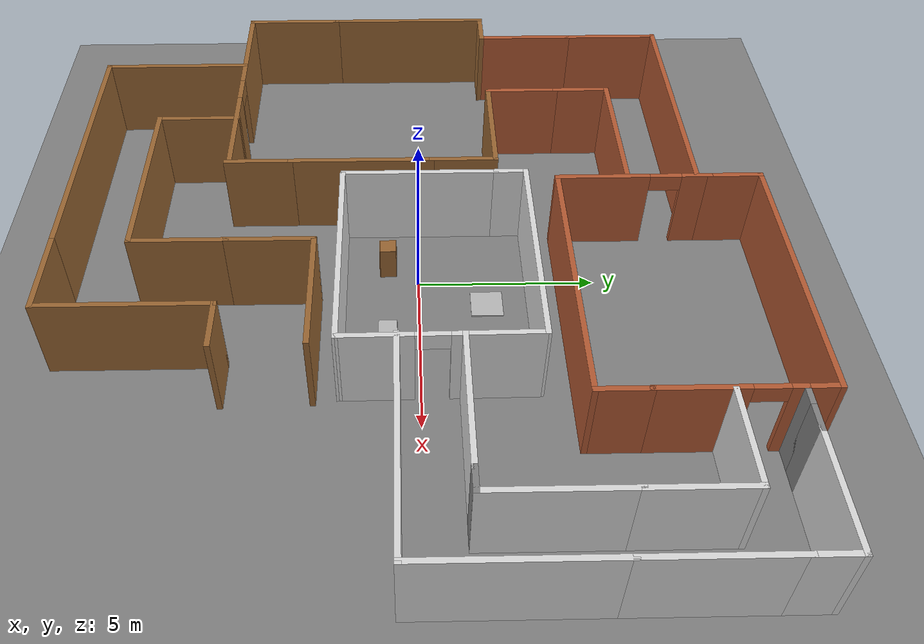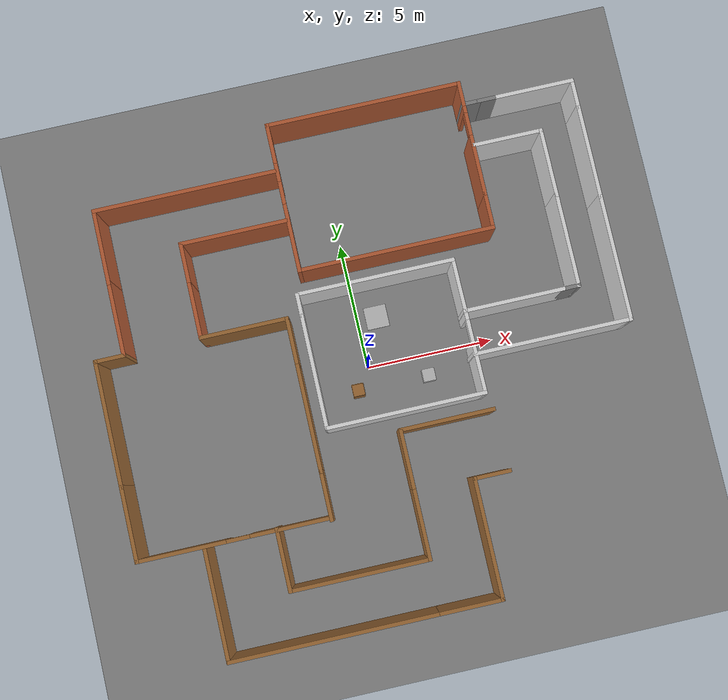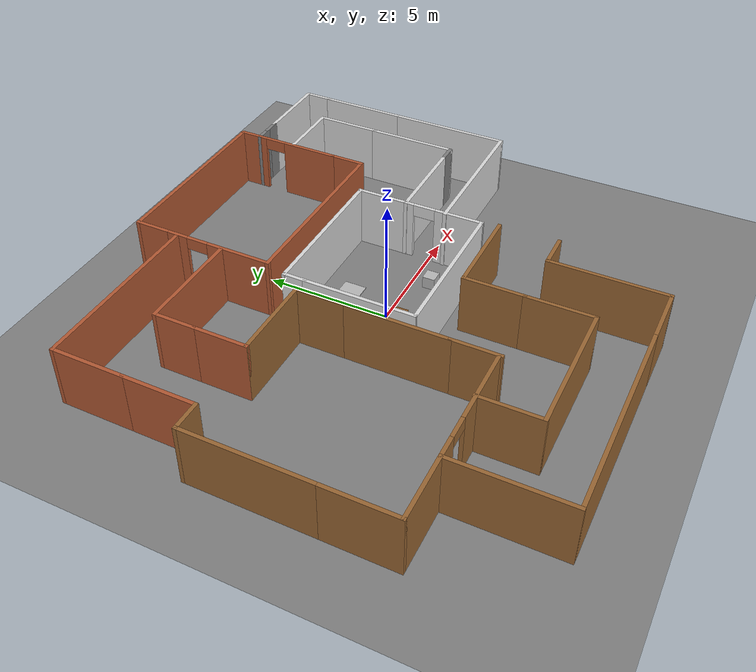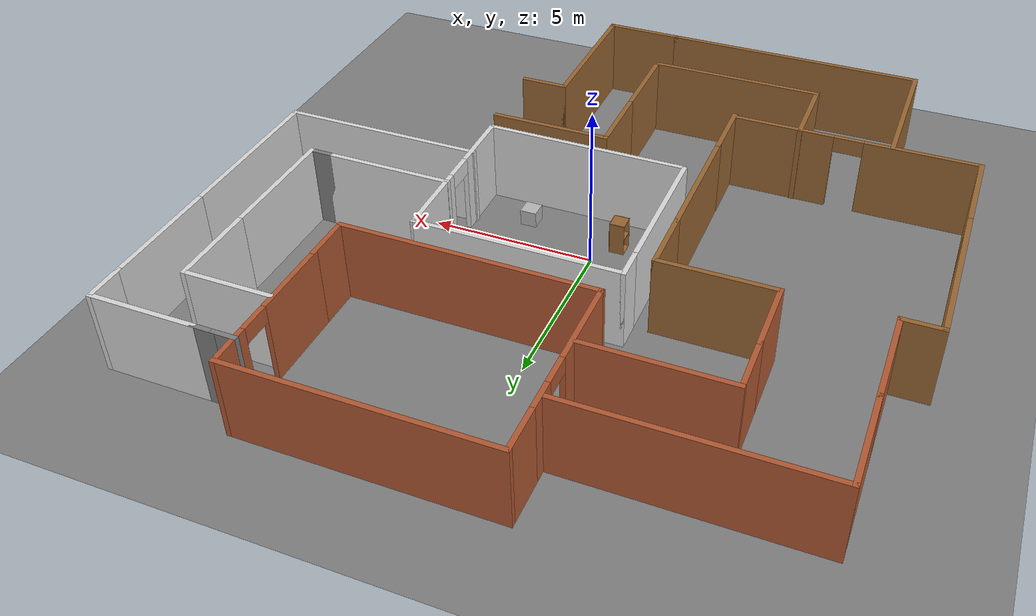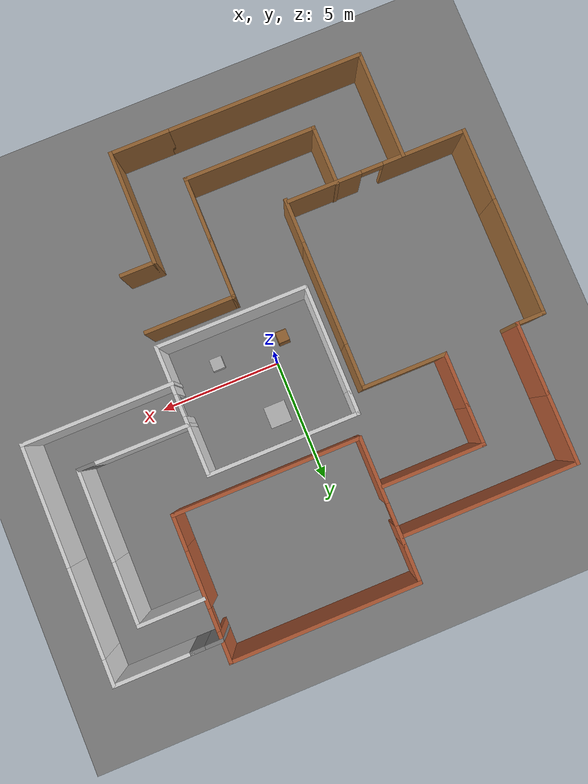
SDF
<sdf version='1.7'>
  <world name='default'>
    <light name='sun' type='directional'>
      <cast_shadows>1</cast_shadows>
      <pose>0 0 10 0 -0 0</pose>
      <diffuse>0.8 0.8 0.8 1</diffuse>
      <specular>0.2 0.2 0.2 1</specular>
      <attenuation>
        <range>1000</range>
        <constant>0.9</constant>
        <linear>0.01</linear>
        <quadratic>0.001</quadratic>
      </attenuation>
      <direction>-0.5 0.1 -0.9</direction>
      <spot>
        <inner_angle>0</inner_angle>
        <outer_angle>0</outer_angle>
        <falloff>0</falloff>
      </spot>
    </light>
    <model name='ground_plane'>
      <static>1</static>
      <link name='link'>
        <collision name='collision'>
          <geometry>
            <plane>
              <normal>0 0 1</normal>
              <size>100 100</size>
            </plane>
          </geometry>
          <surface>
            <friction>
              <ode>
                <mu>100</mu>
                <mu2>50</mu2>
              </ode>
              <torsional>
                <ode/>
              </torsional>
            </friction>
            <contact>
              <ode/>
            </contact>
            <bounce/>
          </surface>
        </collision>
        <visual name='visual'>
          <cast_shadows>0</cast_shadows>
          <geometry>
            <plane>
              <normal>0 0 1</normal>
              <size>100 100</size>
            </plane>
          </geometry>
          <material><diffuse>0.5 0.5 0.5 1</diffuse><ambient>0.5 0.5 0.5 1</ambient></material>
        </visual>
        <self_collide>0</self_collide>
        <enable_wind>0</enable_wind>
        <kinematic>0</kinematic>
      </link>
    </model>
    <gravity>0 0 -9.8</gravity>
    <magnetic_field>6e-06 2.3e-05 -4.2e-05</magnetic_field>
    <atmosphere type='adiabatic'/>
    <physics type='ode'>
      <max_step_size>0.001</max_step_size>
      <real_time_factor>1</real_time_factor>
      <real_time_update_rate>1000</real_time_update_rate>
    </physics>
    <scene>
      <ambient>0.4 0.4 0.4 1</ambient>
      <background>0.7 0.7 0.7 1</background>
      <shadows>1</shadows>
    </scene>
    <audio>
      <device>default</device>
    </audio>
    <wind/>
    <spherical_coordinates>
      <surface_model>EARTH_WGS84</surface_model>
      <latitude_deg>0</latitude_deg>
      <longitude_deg>0</longitude_deg>
      <elevation>0</elevation>
      <heading_deg>0</heading_deg>
    </spherical_coordinates>
    <model name='turtle_train_world.world'>
      <pose>0 0 0 0 0 0</pose>
      <link name='Wall_101'>
        <collision name='Wall_101_Collision'>
          <geometry>
            <box>
              <size>1.5 0.15 2.5</size>
            </box>
          </geometry>
          <pose>0 0 1.25 0 -0 0</pose>
          <surface>
            <contact>
              <ode/>
            </contact>
            <bounce/>
            <friction>
              <torsional>
                <ode/>
              </torsional>
              <ode/>
            </friction>
          </surface>
        </collision>
        <visual name='Wall_101_Visual'>
          <pose>0 0 1.25 0 -0 0</pose>
          <geometry>
            <box>
              <size>1.5 0.15 2.5</size>
            </box>
          </geometry>
          <material><diffuse>0.6 0.4 0.2 1</diffuse><ambient>0.6 0.4 0.2 1</ambient></material>
          <meta>
            <layer>0</layer>
          </meta>
        </visual>
        <pose>3.595 -5.19 0 0 -0 0</pose>
        <self_collide>0</self_collide>
        <enable_wind>0</enable_wind>
        <kinematic>0</kinematic>
      </link>
      <link name='Wall_19'>
        <collision name='Wall_19_Collision'>
          <geometry>
            <box>
              <size>6.25 0.15 2.5</size>
            </box>
          </geometry>
          <pose>0 0 1.25 0 -0 0</pose>
          <surface>
            <contact>
              <ode/>
            </contact>
            <bounce/>
            <friction>
              <torsional>
                <ode/>
              </torsional>
              <ode/>
            </friction>
          </surface>
        </collision>
        <visual name='Wall_19_Visual'>
          <pose>0 0 1.25 0 -0 0</pose>
          <geometry>
            <box>
              <size>6.25 0.15 2.5</size>
            </box>
          </geometry>
          <material><diffuse>0.85 0.85 0.85 1</diffuse><ambient>0.85 0.85 0.85 1</ambient></material>
          <meta>
            <layer>0</layer>
          </meta>
        </visual>
        <pose>1.01 -2.12 0 0 -0 0</pose>
        <self_collide>0</self_collide>
        <enable_wind>0</enable_wind>
        <kinematic>0</kinematic>
      </link>
      <link name='Wall_21'>
        <collision name='Wall_21_Collision'>
          <geometry>
            <box>
              <size>4.5 0.15 2.5</size>
            </box>
          </geometry>
          <pose>0 0 1.25 0 -0 0</pose>
          <surface>
            <contact>
              <ode/>
            </contact>
            <bounce/>
            <friction>
              <torsional>
                <ode/>
              </torsional>
              <ode/>
            </friction>
          </surface>
        </collision>
        <visual name='Wall_21_Visual'>
          <pose>0 0 1.25 0 -0 0</pose>
          <geometry>
            <box>
              <size>4.5 0.15 2.5</size>
            </box>
          </geometry>
          <material><diffuse>0.85 0.85 0.85 1</diffuse><ambient>0.85 0.85 0.85 1</ambient></material>
          <meta>
            <layer>0</layer>
          </meta>
        </visual>
        <pose>-2.09 0.085 0 0 -0 1.5708</pose>
        <self_collide>0</self_collide>
        <enable_wind>0</enable_wind>
        <kinematic>0</kinematic>
      </link>
      <link name='Wall_23'>
        <collision name='Wall_23_Collision'>
          <geometry>
            <box>
              <size>1 0.15 2.5</size>
            </box>
          </geometry>
          <pose>0 0 1.25 0 -0 0</pose>
          <surface>
            <contact>
              <ode/>
            </contact>
            <bounce/>
            <friction>
              <torsional>
                <ode/>
              </torsional>
              <ode/>
            </friction>
          </surface>
        </collision>
        <visual name='Wall_23_Visual'>
          <pose>0 0 1.25 0 -0 0</pose>
          <geometry>
            <box>
              <size>1 0.15 2.5</size>
            </box>
          </geometry>
          <material><diffuse>0.85 0.85 0.85 1</diffuse><ambient>0.85 0.85 0.85 1</ambient></material>
          <meta>
            <layer>0</layer>
          </meta>
        </visual>
        <pose>-2.09 2.685 0 0 -0 1.5708</pose>
        <self_collide>0</self_collide>
        <enable_wind>0</enable_wind>
        <kinematic>0</kinematic>
      </link>
      <link name='Wall_24'>
        <collision name='Wall_24_Collision'>
          <geometry>
            <box>
              <size>6.25 0.15 2.5</size>
            </box>
          </geometry>
          <pose>0 0 1.25 0 -0 0</pose>
          <surface>
            <contact>
              <ode/>
            </contact>
            <bounce/>
            <friction>
              <torsional>
                <ode/>
              </torsional>
              <ode/>
            </friction>
          </surface>
        </collision>
        <visual name='Wall_24_Visual'>
          <pose>0 0 1.25 0 -0 0</pose>
          <geometry>
            <box>
              <size>6.25 0.15 2.5</size>
            </box>
          </geometry>
          <material><diffuse>0.85 0.85 0.85 1</diffuse><ambient>0.85 0.85 0.85 1</ambient></material>
          <meta>
            <layer>0</layer>
          </meta>
        </visual>
        <pose>0.96 3.11 0 0 -0 0</pose>
        <self_collide>0</self_collide>
        <enable_wind>0</enable_wind>
        <kinematic>0</kinematic>
      </link>
      <link name='Wall_26'>
        <pose>4.035 0.495 0 0 -0 -1.56124</pose>
        <visual name='Wall_26_Visual_0'>
          <pose>-1.46331 0 1.25 0 -0 0</pose>
          <geometry>
            <box>
              <size>2.45363 0.15 2.5</size>
            </box>
          </geometry>
          <material><diffuse>0.85 0.85 0.85 1</diffuse><ambient>0.85 0.85 0.85 1</ambient></material>
          <meta>
            <layer>0</layer>
          </meta>
        </visual>
        <collision name='Wall_26_Collision_0'>
          <geometry>
            <box>
              <size>2.45363 0.15 2.5</size>
            </box>
          </geometry>
          <pose>-1.46331 0 1.25 0 -0 0</pose>
          <surface>
            <contact>
              <ode/>
            </contact>
            <bounce/>
            <friction>
              <torsional>
                <ode/>
              </torsional>
              <ode/>
            </friction>
          </surface>
        </collision>
        <visual name='Wall_26_Visual_1'>
          <pose>1.67681 0 1.25 0 -0 0</pose>
          <geometry>
            <box>
              <size>2.02661 0.15 2.5</size>
            </box>
          </geometry>
          <material><diffuse>0.85 0.85 0.85 1</diffuse><ambient>0.85 0.85 0.85 1</ambient></material>
          <meta>
            <layer>0</layer>
          </meta>
        </visual>
        <collision name='Wall_26_Collision_1'>
          <geometry>
            <box>
              <size>2.02661 0.15 2.5</size>
            </box>
          </geometry>
          <pose>1.67681 0 1.25 0 -0 0</pose>
          <surface>
            <contact>
              <ode/>
            </contact>
            <bounce/>
            <friction>
              <torsional>
                <ode/>
              </torsional>
              <ode/>
            </friction>
          </surface>
        </collision>
        <visual name='Wall_26_Visual_2'>
          <pose>0.213508 0 2.25 0 -0 0</pose>
          <geometry>
            <box>
              <size>0.9 0.15 0.5</size>
            </box>
          </geometry>
          <material><diffuse>0.85 0.85 0.85 1</diffuse><ambient>0.85 0.85 0.85 1</ambient></material>
          <meta>
            <layer>0</layer>
          </meta>
        </visual>
        <collision name='Wall_26_Collision_2'>
          <geometry>
            <box>
              <size>0.9 0.15 0.5</size>
            </box>
          </geometry>
          <pose>0.213508 0 2.25 0 -0 0</pose>
          <surface>
            <contact>
              <ode/>
            </contact>
            <bounce/>
            <friction>
              <torsional>
                <ode/>
              </torsional>
              <ode/>
            </friction>
          </surface>
        </collision>
        <self_collide>0</self_collide>
        <enable_wind>0</enable_wind>
        <kinematic>0</kinematic>
      </link>
      <link name='Wall_28'>
        <collision name='Wall_28_Collision'>
          <geometry>
            <box>
              <size>4 0.15 2.5</size>
            </box>
          </geometry>
          <pose>0 0 1.25 0 -0 0</pose>
          <surface>
            <contact>
              <ode/>
            </contact>
            <bounce/>
            <friction>
              <torsional>
                <ode/>
              </torsional>
              <ode/>
            </friction>
          </surface>
        </collision>
        <visual name='Wall_28_Visual'>
          <pose>0 0 1.25 0 -0 0</pose>
          <geometry>
            <box>
              <size>4 0.15 2.5</size>
            </box>
          </geometry>
          <material><diffuse>0.85 0.85 0.85 1</diffuse><ambient>0.85 0.85 0.85 1</ambient></material>
          <meta>
            <layer>0</layer>
          </meta>
        </visual>
        <pose>5.945 1.08 0 0 -0 0</pose>
        <self_collide>0</self_collide>
        <enable_wind>0</enable_wind>
        <kinematic>0</kinematic>
      </link>
      <link name='Wall_34'>
        <collision name='Wall_34_Collision'>
          <geometry>
            <box>
              <size>6.25 0.15 2.5</size>
            </box>
          </geometry>
          <pose>0 0 1.25 0 -0 0</pose>
          <surface>
            <contact>
              <ode/>
            </contact>
            <bounce/>
            <friction>
              <torsional>
                <ode/>
              </torsional>
              <ode/>
            </friction>
          </surface>
        </collision>
        <visual name='Wall_34_Visual'>
          <pose>0 0 1.25 0 -0 0</pose>
          <geometry>
            <box>
              <size>6.25 0.15 2.5</size>
            </box>
          </geometry>
          <material><diffuse>0.85 0.85 0.85 1</diffuse><ambient>0.85 0.85 0.85 1</ambient></material>
          <meta>
            <layer>0</layer>
          </meta>
        </visual>
        <pose>7.05 -0.61 0 0 -0 0</pose>
        <self_collide>0</self_collide>
        <enable_wind>0</enable_wind>
        <kinematic>0</kinematic>
      </link>
      <link name='Wall_36'>
        <collision name='Wall_36_Collision'>
          <geometry>
            <box>
              <size>5 0.15 2.5</size>
            </box>
          </geometry>
          <pose>0 0 1.25 0 -0 0</pose>
          <surface>
            <contact>
              <ode/>
            </contact>
            <bounce/>
            <friction>
              <torsional>
                <ode/>
              </torsional>
              <ode/>
            </friction>
          </surface>
        </collision>
        <visual name='Wall_36_Visual'>
          <pose>0 0 1.25 0 -0 0</pose>
          <geometry>
            <box>
              <size>5 0.15 2.5</size>
            </box>
          </geometry>
          <material><diffuse>0.85 0.85 0.85 1</diffuse><ambient>0.85 0.85 0.85 1</ambient></material>
          <meta>
            <layer>0</layer>
          </meta>
        </visual>
        <pose>10.1 1.815 0 0 -0 1.5708</pose>
        <self_collide>0</self_collide>
        <enable_wind>0</enable_wind>
        <kinematic>0</kinematic>
      </link>
      <link name='Wall_38'>
        <collision name='Wall_38_Collision'>
          <geometry>
            <box>
              <size>3.75 0.15 2.5</size>
            </box>
          </geometry>
          <pose>0 0 1.25 0 -0 0</pose>
          <surface>
            <contact>
              <ode/>
            </contact>
            <bounce/>
            <friction>
              <torsional>
                <ode/>
              </torsional>
              <ode/>
            </friction>
          </surface>
        </collision>
        <visual name='Wall_38_Visual'>
          <pose>0 0 1.25 0 -0 0</pose>
          <geometry>
            <box>
              <size>3.75 0.15 2.5</size>
            </box>
          </geometry>
          <material><diffuse>0.85 0.85 0.85 1</diffuse><ambient>0.85 0.85 0.85 1</ambient></material>
          <meta>
            <layer>0</layer>
          </meta>
        </visual>
        <pose>10.1 6.04 0 0 -0 1.5708</pose>
        <self_collide>0</self_collide>
        <enable_wind>0</enable_wind>
        <kinematic>0</kinematic>
      </link>
      <link name='Wall_40'>
        <collision name='Wall_40_Collision'>
          <geometry>
            <box>
              <size>1.25 0.15 2.5</size>
            </box>
          </geometry>
          <pose>0 0 1.25 0 -0 0</pose>
          <surface>
            <contact>
              <ode/>
            </contact>
            <bounce/>
            <friction>
              <torsional>
                <ode/>
              </torsional>
              <ode/>
            </friction>
          </surface>
        </collision>
        <visual name='Wall_40_Visual'>
          <pose>0 0 1.25 0 -0 0</pose>
          <geometry>
            <box>
              <size>1.25 0.15 2.5</size>
            </box>
          </geometry>
          <material><diffuse>0.85 0.85 0.85 1</diffuse><ambient>0.85 0.85 0.85 1</ambient></material>
          <meta>
            <layer>0</layer>
          </meta>
        </visual>
        <pose>10.1 8.39 0 0 -0 1.5708</pose>
        <self_collide>0</self_collide>
        <enable_wind>0</enable_wind>
        <kinematic>0</kinematic>
      </link>
      <link name='Wall_41'>
        <collision name='Wall_41_Collision'>
          <geometry>
            <box>
              <size>3.25 0.15 2.5</size>
            </box>
          </geometry>
          <pose>0 0 1.25 0 -0 0</pose>
          <surface>
            <contact>
              <ode/>
            </contact>
            <bounce/>
            <friction>
              <torsional>
                <ode/>
              </torsional>
              <ode/>
            </friction>
          </surface>
        </collision>
        <visual name='Wall_41_Visual'>
          <pose>0 0 1.25 0 -0 0</pose>
          <geometry>
            <box>
              <size>3.25 0.15 2.5</size>
            </box>
          </geometry>
          <material><diffuse>0.85 0.85 0.85 1</diffuse><ambient>0.85 0.85 0.85 1</ambient></material>
          <meta>
            <layer>0</layer>
          </meta>
        </visual>
        <pose>8.55 8.94 0 0 -0 3.14159</pose>
        <self_collide>0</self_collide>
        <enable_wind>0</enable_wind>
        <kinematic>0</kinematic>
      </link>
      <link name='Wall_43'>
        <collision name='Wall_43_Collision'>
          <geometry>
            <box>
              <size>0.75 0.15 2.5</size>
            </box>
          </geometry>
          <pose>0 0 1.25 0 -0 0</pose>
          <surface>
            <contact>
              <ode/>
            </contact>
            <bounce/>
            <friction>
              <torsional>
                <ode/>
              </torsional>
              <ode/>
            </friction>
          </surface>
        </collision>
        <visual name='Wall_43_Visual'>
          <pose>0 0 1.25 0 -0 0</pose>
          <geometry>
            <box>
              <size>0.75 0.15 2.5</size>
            </box>
          </geometry>
          <material><diffuse>0.5 0.5 0.5 1</diffuse><ambient>0.5 0.5 0.5 1</ambient></material>
          <meta>
            <layer>0</layer>
          </meta>
        </visual>
        <pose>8.17 1.08 0 0 -0 0</pose>
        <self_collide>0</self_collide>
        <enable_wind>0</enable_wind>
        <kinematic>0</kinematic>
      </link>
      <link name='Wall_44'>
        <collision name='Wall_44_Collision'>
          <geometry>
            <box>
              <size>3.75 0.15 2.5</size>
            </box>
          </geometry>
          <pose>0 0 1.25 0 -0 0</pose>
          <surface>
            <contact>
              <ode/>
            </contact>
            <bounce/>
            <friction>
              <torsional>
                <ode/>
              </torsional>
              <ode/>
            </friction>
          </surface>
        </collision>
        <visual name='Wall_44_Visual'>
          <pose>0 0 1.25 0 -0 0</pose>
          <geometry>
            <box>
              <size>3.75 0.15 2.5</size>
            </box>
          </geometry>
          <material><diffuse>0.85 0.85 0.85 1</diffuse><ambient>0.85 0.85 0.85 1</ambient></material>
          <meta>
            <layer>0</layer>
          </meta>
        </visual>
        <pose>8.47 2.88 0 0 -0 1.5708</pose>
        <self_collide>0</self_collide>
        <enable_wind>0</enable_wind>
        <kinematic>0</kinematic>
      </link>
      <link name='Wall_46'>
        <collision name='Wall_46_Collision'>
          <geometry>
            <box>
              <size>2.75 0.15 2.5</size>
            </box>
          </geometry>
          <pose>0 0 1.25 0 -0 0</pose>
          <surface>
            <contact>
              <ode/>
            </contact>
            <bounce/>
            <friction>
              <torsional>
                <ode/>
              </torsional>
              <ode/>
            </friction>
          </surface>
        </collision>
        <visual name='Wall_46_Visual'>
          <pose>0 0 1.25 0 -0 0</pose>
          <geometry>
            <box>
              <size>2.75 0.15 2.5</size>
            </box>
          </geometry>
          <material><diffuse>0.85 0.85 0.85 1</diffuse><ambient>0.85 0.85 0.85 1</ambient></material>
          <meta>
            <layer>0</layer>
          </meta>
        </visual>
        <pose>8.47 5.98 0 0 -0 1.5708</pose>
        <self_collide>0</self_collide>
        <enable_wind>0</enable_wind>
        <kinematic>0</kinematic>
      </link>
      <link name='Wall_47'>
        <collision name='Wall_47_Collision'>
          <geometry>
            <box>
              <size>2.75 0.15 2.5</size>
            </box>
          </geometry>
          <pose>0 0 1.25 0 -0 0</pose>
          <surface>
            <contact>
              <ode/>
            </contact>
            <bounce/>
            <friction>
              <torsional>
                <ode/>
              </torsional>
              <ode/>
            </friction>
          </surface>
        </collision>
        <visual name='Wall_47_Visual'>
          <pose>0 0 1.25 0 -0 0</pose>
          <geometry>
            <box>
              <size>2.75 0.15 2.5</size>
            </box>
          </geometry>
          <material><diffuse>0.85 0.85 0.85 1</diffuse><ambient>0.85 0.85 0.85 1</ambient></material>
          <meta>
            <layer>0</layer>
          </meta>
        </visual>
        <pose>7.17 7.28 0 0 -0 3.14159</pose>
        <self_collide>0</self_collide>
        <enable_wind>0</enable_wind>
        <kinematic>0</kinematic>
      </link>
      <link name='Wall_49'>
        <collision name='Wall_49_Collision'>
          <geometry>
            <box>
              <size>0.75 0.15 2.5</size>
            </box>
          </geometry>
          <pose>0 0 1.25 0 -0 0</pose>
          <surface>
            <contact>
              <ode/>
            </contact>
            <bounce/>
            <friction>
              <torsional>
                <ode/>
              </torsional>
              <ode/>
            </friction>
          </surface>
        </collision>
        <visual name='Wall_49_Visual'>
          <pose>0 0 1.25 0 -0 0</pose>
          <geometry>
            <box>
              <size>0.75 0.15 2.5</size>
            </box>
          </geometry>
          <material><diffuse>0.5 0.5 0.5 1</diffuse><ambient>0.5 0.5 0.5 1</ambient></material>
          <meta>
            <layer>0</layer>
          </meta>
        </visual>
        <pose>6.7 8.94 0 0 -0 3.14159</pose>
        <self_collide>0</self_collide>
        <enable_wind>0</enable_wind>
        <kinematic>0</kinematic>
      </link>
      <link name='Wall_51'>
        <collision name='Wall_51_Collision'>
          <geometry>
            <box>
              <size>0.75 0.15 2.5</size>
            </box>
          </geometry>
          <pose>0 0 1.25 0 -0 0</pose>
          <surface>
            <contact>
              <ode/>
            </contact>
            <bounce/>
            <friction>
              <torsional>
                <ode/>
              </torsional>
              <ode/>
            </friction>
          </surface>
        </collision>
        <visual name='Wall_51_Visual'>
          <pose>0 0 1.25 0 -0 0</pose>
          <geometry>
            <box>
              <size>0.75 0.15 2.5</size>
            </box>
          </geometry>
          <material><diffuse>0.5 0.5 0.5 1</diffuse><ambient>0.5 0.5 0.5 1</ambient></material>
          <meta>
            <layer>0</layer>
          </meta>
        </visual>
        <pose>6.1 8.94 0 0 -0 3.14159</pose>
        <self_collide>0</self_collide>
        <enable_wind>0</enable_wind>
        <kinematic>0</kinematic>
      </link>
      <link name='Wall_52'>
        <pose>5.8 7.14 0 0 -0 -1.5708</pose>
        <visual name='Wall_52_Visual_0'>
          <pose>-1.6625 0 1.25 0 -0 0</pose>
          <geometry>
            <box>
              <size>0.425 0.15 2.5</size>
            </box>
          </geometry>
          <material><diffuse>0.7 0.35 0.2 1</diffuse><ambient>0.7 0.35 0.2 1</ambient></material>
          <meta>
            <layer>0</layer>
          </meta>
        </visual>
        <collision name='Wall_52_Collision_0'>
          <geometry>
            <box>
              <size>0.425 0.15 2.5</size>
            </box>
          </geometry>
          <pose>-1.6625 0 1.25 0 -0 0</pose>
          <surface>
            <contact>
              <ode/>
            </contact>
            <bounce/>
            <friction>
              <torsional>
                <ode/>
              </torsional>
              <ode/>
            </friction>
          </surface>
        </collision>
        <visual name='Wall_52_Visual_1'>
          <pose>0.6625 0 1.25 0 -0 0</pose>
          <geometry>
            <box>
              <size>2.425 0.15 2.5</size>
            </box>
          </geometry>
          <material><diffuse>0.7 0.35 0.2 1</diffuse><ambient>0.7 0.35 0.2 1</ambient></material>
          <meta>
            <layer>0</layer>
          </meta>
        </visual>
        <collision name='Wall_52_Collision_1'>
          <geometry>
            <box>
              <size>2.425 0.15 2.5</size>
            </box>
          </geometry>
          <pose>0.6625 0 1.25 0 -0 0</pose>
          <surface>
            <contact>
              <ode/>
            </contact>
            <bounce/>
            <friction>
              <torsional>
                <ode/>
              </torsional>
              <ode/>
            </friction>
          </surface>
        </collision>
        <visual name='Wall_52_Visual_2'>
          <pose>-1 0 2.25 0 -0 0</pose>
          <geometry>
            <box>
              <size>0.9 0.15 0.5</size>
            </box>
          </geometry>
          <material><diffuse>0.7 0.35 0.2 1</diffuse><ambient>0.7 0.35 0.2 1</ambient></material>
          <meta>
            <layer>0</layer>
          </meta>
        </visual>
        <collision name='Wall_52_Collision_2'>
          <geometry>
            <box>
              <size>0.9 0.15 0.5</size>
            </box>
          </geometry>
          <pose>-1 0 2.25 0 -0 0</pose>
          <surface>
            <contact>
              <ode/>
            </contact>
            <bounce/>
            <friction>
              <torsional>
                <ode/>
              </torsional>
              <ode/>
            </friction>
          </surface>
        </collision>
        <self_collide>0</self_collide>
        <enable_wind>0</enable_wind>
        <kinematic>0</kinematic>
      </link>
      <link name='Wall_54'>
        <collision name='Wall_54_Collision'>
          <geometry>
            <box>
              <size>1.5 0.15 2.5</size>
            </box>
          </geometry>
          <pose>0 0 1.25 0 -0 0</pose>
          <surface>
            <contact>
              <ode/>
            </contact>
            <bounce/>
            <friction>
              <torsional>
                <ode/>
              </torsional>
              <ode/>
            </friction>
          </surface>
        </collision>
        <visual name='Wall_54_Visual'>
          <pose>0 0 1.25 0 -0 0</pose>
          <geometry>
            <box>
              <size>1.5 0.15 2.5</size>
            </box>
          </geometry>
          <material><diffuse>0.7 0.35 0.2 1</diffuse><ambient>0.7 0.35 0.2 1</ambient></material>
          <meta>
            <layer>0</layer>
          </meta>
        </visual>
        <pose>5.8 4.665 0 0 -0 -1.5708</pose>
        <self_collide>0</self_collide>
        <enable_wind>0</enable_wind>
        <kinematic>0</kinematic>
      </link>
      <link name='Wall_55'>
        <collision name='Wall_55_Collision'>
          <geometry>
            <box>
              <size>7.75 0.15 2.5</size>
            </box>
          </geometry>
          <pose>0 0 1.25 0 -0 0</pose>
          <surface>
            <contact>
              <ode/>
            </contact>
            <bounce/>
            <friction>
              <torsional>
                <ode/>
              </torsional>
              <ode/>
            </friction>
          </surface>
        </collision>
        <visual name='Wall_55_Visual'>
          <pose>0 0 1.25 0 -0 0</pose>
          <geometry>
            <box>
              <size>7.75 0.15 2.5</size>
            </box>
          </geometry>
          <material><diffuse>0.7 0.35 0.2 1</diffuse><ambient>0.7 0.35 0.2 1</ambient></material>
          <meta>
            <layer>0</layer>
          </meta>
        </visual>
        <pose>2 3.99 0 0 -0 3.14159</pose>
        <self_collide>0</self_collide>
        <enable_wind>0</enable_wind>
        <kinematic>0</kinematic>
      </link>
      <link name='Wall_57'>
        <pose>-1.8 6.165 0 0 -0 1.5708</pose>
        <visual name='Wall_57_Visual_0'>
          <pose>-0.8925 0 1.25 0 -0 0</pose>
          <geometry>
            <box>
              <size>2.715 0.15 2.5</size>
            </box>
          </geometry>
          <material><diffuse>0.7 0.35 0.2 1</diffuse><ambient>0.7 0.35 0.2 1</ambient></material>
          <meta>
            <layer>0</layer>
          </meta>
        </visual>
        <collision name='Wall_57_Collision_0'>
          <geometry>
            <box>
              <size>2.715 0.15 2.5</size>
            </box>
          </geometry>
          <pose>-0.8925 0 1.25 0 -0 0</pose>
          <surface>
            <contact>
              <ode/>
            </contact>
            <bounce/>
            <friction>
              <torsional>
                <ode/>
              </torsional>
              <ode/>
            </friction>
          </surface>
        </collision>
        <visual name='Wall_57_Visual_1'>
          <pose>1.8075 0 1.25 0 -0 0</pose>
          <geometry>
            <box>
              <size>0.885 0.15 2.5</size>
            </box>
          </geometry>
          <material><diffuse>0.7 0.35 0.2 1</diffuse><ambient>0.7 0.35 0.2 1</ambient></material>
          <meta>
            <layer>0</layer>
          </meta>
        </visual>
        <collision name='Wall_57_Collision_1'>
          <geometry>
            <box>
              <size>0.885 0.15 2.5</size>
            </box>
          </geometry>
          <pose>1.8075 0 1.25 0 -0 0</pose>
          <surface>
            <contact>
              <ode/>
            </contact>
            <bounce/>
            <friction>
              <torsional>
                <ode/>
              </torsional>
              <ode/>
            </friction>
          </surface>
        </collision>
        <visual name='Wall_57_Visual_2'>
          <pose>0.915 0 2.25 0 -0 0</pose>
          <geometry>
            <box>
              <size>0.9 0.15 0.5</size>
            </box>
          </geometry>
          <material><diffuse>0.7 0.35 0.2 1</diffuse><ambient>0.7 0.35 0.2 1</ambient></material>
          <meta>
            <layer>0</layer>
          </meta>
        </visual>
        <collision name='Wall_57_Collision_2'>
          <geometry>
            <box>
              <size>0.9 0.15 0.5</size>
            </box>
          </geometry>
          <pose>0.915 0 2.25 0 -0 0</pose>
          <surface>
            <contact>
              <ode/>
            </contact>
            <bounce/>
            <friction>
              <torsional>
                <ode/>
              </torsional>
              <ode/>
            </friction>
          </surface>
        </collision>
        <self_collide>0</self_collide>
        <enable_wind>0</enable_wind>
        <kinematic>0</kinematic>
      </link>
      <link name='Wall_59'>
        <collision name='Wall_59_Collision'>
          <geometry>
            <box>
              <size>1 0.15 2.5</size>
            </box>
          </geometry>
          <pose>0 0 1.25 0 -0 0</pose>
          <surface>
            <contact>
              <ode/>
            </contact>
            <bounce/>
            <friction>
              <torsional>
                <ode/>
              </torsional>
              <ode/>
            </friction>
          </surface>
        </collision>
        <visual name='Wall_59_Visual'>
          <pose>0 0 1.25 0 -0 0</pose>
          <geometry>
            <box>
              <size>1 0.15 2.5</size>
            </box>
          </geometry>
          <material><diffuse>0.7 0.35 0.2 1</diffuse><ambient>0.7 0.35 0.2 1</ambient></material>
          <meta>
            <layer>0</layer>
          </meta>
        </visual>
        <pose>5.8 9.365 0 0 -0 1.5708</pose>
        <self_collide>0</self_collide>
        <enable_wind>0</enable_wind>
        <kinematic>0</kinematic>
      </link>
      <link name='Wall_60'>
        <collision name='Wall_60_Collision'>
          <geometry>
            <box>
              <size>7.75 0.15 2.5</size>
            </box>
          </geometry>
          <pose>0 0 1.25 0 -0 0</pose>
          <surface>
            <contact>
              <ode/>
            </contact>
            <bounce/>
            <friction>
              <torsional>
                <ode/>
              </torsional>
              <ode/>
            </friction>
          </surface>
        </collision>
        <visual name='Wall_60_Visual'>
          <pose>0 0 1.25 0 -0 0</pose>
          <geometry>
            <box>
              <size>7.75 0.15 2.5</size>
            </box>
          </geometry>
          <material><diffuse>0.7 0.35 0.2 1</diffuse><ambient>0.7 0.35 0.2 1</ambient></material>
          <meta>
            <layer>0</layer>
          </meta>
        </visual>
        <pose>2 9.79 0 0 -0 3.14159</pose>
        <self_collide>0</self_collide>
        <enable_wind>0</enable_wind>
        <kinematic>0</kinematic>
      </link>
      <link name='Wall_61'>
        <collision name='Wall_61_Collision'>
          <geometry>
            <box>
              <size>1.6 0.15 2.5</size>
            </box>
          </geometry>
          <pose>0 0 1.25 0 -0 0</pose>
          <surface>
            <contact>
              <ode/>
            </contact>
            <bounce/>
            <friction>
              <torsional>
                <ode/>
              </torsional>
              <ode/>
            </friction>
          </surface>
        </collision>
        <visual name='Wall_61_Visual'>
          <pose>0 0 1.25 0 -0 0</pose>
          <geometry>
            <box>
              <size>1.6 0.15 2.5</size>
            </box>
          </geometry>
          <material><diffuse>0.7 0.35 0.2 1</diffuse><ambient>0.7 0.35 0.2 1</ambient></material>
          <meta>
            <layer>0</layer>
          </meta>
        </visual>
        <pose>-1.8 9.065 0 0 -0 -1.5708</pose>
        <self_collide>0</self_collide>
        <enable_wind>0</enable_wind>
        <kinematic>0</kinematic>
      </link>
      <link name='Wall_64'>
        <collision name='Wall_64_Collision'>
          <geometry>
            <box>
              <size>4.25 0.15 2.5</size>
            </box>
          </geometry>
          <pose>0 0 1.25 0 -0 0</pose>
          <surface>
            <contact>
              <ode/>
            </contact>
            <bounce/>
            <friction>
              <torsional>
                <ode/>
              </torsional>
              <ode/>
            </friction>
          </surface>
        </collision>
        <visual name='Wall_64_Visual'>
          <pose>0 0 1.25 0 -0 0</pose>
          <geometry>
            <box>
              <size>4.25 0.15 2.5</size>
            </box>
          </geometry>
          <material><diffuse>0.7 0.35 0.2 1</diffuse><ambient>0.7 0.35 0.2 1</ambient></material>
          <meta>
            <layer>0</layer>
          </meta>
        </visual>
        <pose>-3.96 5.99 0 0 -0 3.14159</pose>
        <self_collide>0</self_collide>
        <enable_wind>0</enable_wind>
        <kinematic>0</kinematic>
      </link>
      <link name='Wall_65'>
        <collision name='Wall_65_Collision'>
          <geometry>
            <box>
              <size>1.75 0.15 2.5</size>
            </box>
          </geometry>
          <pose>0 0 1.25 0 -0 0</pose>
          <surface>
            <contact>
              <ode/>
            </contact>
            <bounce/>
            <friction>
              <torsional>
                <ode/>
              </torsional>
              <ode/>
            </friction>
          </surface>
        </collision>
        <visual name='Wall_65_Visual'>
          <pose>0 0 1.25 0 -0 0</pose>
          <geometry>
            <box>
              <size>1.75 0.15 2.5</size>
            </box>
          </geometry>
          <material><diffuse>0.7 0.35 0.2 1</diffuse><ambient>0.7 0.35 0.2 1</ambient></material>
          <meta>
            <layer>0</layer>
          </meta>
        </visual>
        <pose>-6.01 5.19 0 0 -0 -1.5708</pose>
        <self_collide>0</self_collide>
        <enable_wind>0</enable_wind>
        <kinematic>0</kinematic>
      </link>
      <link name='Wall_67'>
        <collision name='Wall_67_Collision'>
          <geometry>
            <box>
              <size>7.25 0.15 2.5</size>
            </box>
          </geometry>
          <pose>0 0 1.25 0 -0 0</pose>
          <surface>
            <contact>
              <ode/>
            </contact>
            <bounce/>
            <friction>
              <torsional>
                <ode/>
              </torsional>
              <ode/>
            </friction>
          </surface>
        </collision>
        <visual name='Wall_67_Visual'>
          <pose>0 0 1.25 0 -0 0</pose>
          <geometry>
            <box>
              <size>7.25 0.15 2.5</size>
            </box>
          </geometry>
          <material><diffuse>0.7 0.35 0.2 1</diffuse><ambient>0.7 0.35 0.2 1</ambient></material>
          <meta>
            <layer>0</layer>
          </meta>
        </visual>
        <pose>-5.45 7.97 0 0 -0 3.14159</pose>
        <self_collide>0</self_collide>
        <enable_wind>0</enable_wind>
        <kinematic>0</kinematic>
      </link>
      <link name='Wall_68'>
        <collision name='Wall_68_Collision'>
          <geometry>
            <box>
              <size>3 0.15 2.5</size>
            </box>
          </geometry>
          <pose>0 0 1.25 0 -0 0</pose>
          <surface>
            <contact>
              <ode/>
            </contact>
            <bounce/>
            <friction>
              <torsional>
                <ode/>
              </torsional>
              <ode/>
            </friction>
          </surface>
        </collision>
        <visual name='Wall_68_Visual'>
          <pose>0 0 1.25 0 -0 0</pose>
          <geometry>
            <box>
              <size>3 0.15 2.5</size>
            </box>
          </geometry>
          <material><diffuse>0.7 0.35 0.2 1</diffuse><ambient>0.7 0.35 0.2 1</ambient></material>
          <meta>
            <layer>0</layer>
          </meta>
        </visual>
        <pose>-9 6.545 0 0 -0 -1.5708</pose>
        <self_collide>0</self_collide>
        <enable_wind>0</enable_wind>
        <kinematic>0</kinematic>
      </link>
      <link name='Wall_70'>
        <collision name='Wall_70_Collision'>
          <geometry>
            <box>
              <size>3 0.15 2.5</size>
            </box>
          </geometry>
          <pose>0 0 1.25 0 -0 0</pose>
          <surface>
            <contact>
              <ode/>
            </contact>
            <bounce/>
            <friction>
              <torsional>
                <ode/>
              </torsional>
              <ode/>
            </friction>
          </surface>
        </collision>
        <visual name='Wall_70_Visual'>
          <pose>0 0 1.25 0 -0 0</pose>
          <geometry>
            <box>
              <size>3 0.15 2.5</size>
            </box>
          </geometry>
          <material><diffuse>0.7 0.35 0.2 1</diffuse><ambient>0.7 0.35 0.2 1</ambient></material>
          <meta>
            <layer>0</layer>
          </meta>
        </visual>
        <pose>-9 3.695 0 0 -0 -1.5708</pose>
        <self_collide>0</self_collide>
        <enable_wind>0</enable_wind>
        <kinematic>0</kinematic>
      </link>
      <link name='Wall_72'>
        <collision name='Wall_72_Collision'>
          <geometry>
            <box>
              <size>2.25 0.15 2.5</size>
            </box>
          </geometry>
          <pose>0 0 1.25 0 -0 0</pose>
          <surface>
            <contact>
              <ode/>
            </contact>
            <bounce/>
            <friction>
              <torsional>
                <ode/>
              </torsional>
              <ode/>
            </friction>
          </surface>
        </collision>
        <visual name='Wall_72_Visual'>
          <pose>0 0 1.25 0 -0 0</pose>
          <geometry>
            <box>
              <size>2.25 0.15 2.5</size>
            </box>
          </geometry>
          <material><diffuse>0.7 0.35 0.2 1</diffuse><ambient>0.7 0.35 0.2 1</ambient></material>
          <meta>
            <layer>0</layer>
          </meta>
        </visual>
        <pose>-6.01 3.34 0 0 -0 -1.5708</pose>
        <self_collide>0</self_collide>
        <enable_wind>0</enable_wind>
        <kinematic>0</kinematic>
      </link>
      <link name='Wall_73'>
        <collision name='Wall_73_Collision'>
          <geometry>
            <box>
              <size>3.5 0.15 2.5</size>
            </box>
          </geometry>
          <pose>0 0 1.25 0 -0 0</pose>
          <surface>
            <contact>
              <ode/>
            </contact>
            <bounce/>
            <friction>
              <torsional>
                <ode/>
              </torsional>
              <ode/>
            </friction>
          </surface>
        </collision>
        <visual name='Wall_73_Visual'>
          <pose>0 0 1.25 0 -0 0</pose>
          <geometry>
            <box>
              <size>3.5 0.15 2.5</size>
            </box>
          </geometry>
          <material><diffuse>0.6 0.4 0.2 1</diffuse><ambient>0.6 0.4 0.2 1</ambient></material>
          <meta>
            <layer>0</layer>
          </meta>
        </visual>
        <pose>-4.335 2.29 0 0 -0 0</pose>
        <self_collide>0</self_collide>
        <enable_wind>0</enable_wind>
        <kinematic>0</kinematic>
      </link>
      <link name='Wall_74'>
        <collision name='Wall_74_Collision'>
          <geometry>
            <box>
              <size>2 0.15 2.5</size>
            </box>
          </geometry>
          <pose>0 0 1.25 0 -0 0</pose>
          <surface>
            <contact>
              <ode/>
            </contact>
            <bounce/>
            <friction>
              <torsional>
                <ode/>
              </torsional>
              <ode/>
            </friction>
          </surface>
        </collision>
        <visual name='Wall_74_Visual'>
          <pose>0 0 1.25 0 -0 0</pose>
          <geometry>
            <box>
              <size>2 0.15 2.5</size>
            </box>
          </geometry>
          <material><diffuse>0.6 0.4 0.2 1</diffuse><ambient>0.6 0.4 0.2 1</ambient></material>
          <meta>
            <layer>0</layer>
          </meta>
        </visual>
        <pose>-2.66 1.365 0 0 -0 -1.5708</pose>
        <self_collide>0</self_collide>
        <enable_wind>0</enable_wind>
        <kinematic>0</kinematic>
      </link>
      <link name='Wall_76'>
        <collision name='Wall_76_Collision'>
          <geometry>
            <box>
              <size>1.25 0.15 2.5</size>
            </box>
          </geometry>
          <pose>0 0 1.25 0 -0 0</pose>
          <surface>
            <contact>
              <ode/>
            </contact>
            <bounce/>
            <friction>
              <torsional>
                <ode/>
              </torsional>
              <ode/>
            </friction>
          </surface>
        </collision>
        <visual name='Wall_76_Visual'>
          <pose>0 0 1.25 0 -0 0</pose>
          <geometry>
            <box>
              <size>1.25 0.15 2.5</size>
            </box>
          </geometry>
          <material><diffuse>0.6 0.4 0.2 1</diffuse><ambient>0.6 0.4 0.2 1</ambient></material>
          <meta>
            <layer>0</layer>
          </meta>
        </visual>
        <pose>-9.55 2.27 0 0 -0 3.14159</pose>
        <self_collide>0</self_collide>
        <enable_wind>0</enable_wind>
        <kinematic>0</kinematic>
      </link>
      <link name='Wall_77'>
        <collision name='Wall_77_Collision'>
          <geometry>
            <box>
              <size>5 0.15 2.5</size>
            </box>
          </geometry>
          <pose>0 0 1.25 0 -0 0</pose>
          <surface>
            <contact>
              <ode/>
            </contact>
            <bounce/>
            <friction>
              <torsional>
                <ode/>
              </torsional>
              <ode/>
            </friction>
          </surface>
        </collision>
        <visual name='Wall_77_Visual'>
          <pose>0 0 1.25 0 -0 0</pose>
          <geometry>
            <box>
              <size>5 0.15 2.5</size>
            </box>
          </geometry>
          <material><diffuse>0.6 0.4 0.2 1</diffuse><ambient>0.6 0.4 0.2 1</ambient></material>
          <meta>
            <layer>0</layer>
          </meta>
        </visual>
        <pose>-10.1 -0.155 0 0 -0 -1.5708</pose>
        <self_collide>0</self_collide>
        <enable_wind>0</enable_wind>
        <kinematic>0</kinematic>
      </link>
      <link name='Wall_79'>
        <collision name='Wall_79_Collision'>
          <geometry>
            <box>
              <size>4.25 0.15 2.5</size>
            </box>
          </geometry>
          <pose>0 0 1.25 0 -0 0</pose>
          <surface>
            <contact>
              <ode/>
            </contact>
            <bounce/>
            <friction>
              <torsional>
                <ode/>
              </torsional>
              <ode/>
            </friction>
          </surface>
        </collision>
        <visual name='Wall_79_Visual'>
          <pose>0 0 1.25 0 -0 0</pose>
          <geometry>
            <box>
              <size>4.25 0.15 2.5</size>
            </box>
          </geometry>
          <material><diffuse>0.6 0.4 0.2 1</diffuse><ambient>0.6 0.4 0.2 1</ambient></material>
          <meta>
            <layer>0</layer>
          </meta>
        </visual>
        <pose>-2.66 -1.61 0 0 -0 -1.5708</pose>
        <self_collide>0</self_collide>
        <enable_wind>0</enable_wind>
        <kinematic>0</kinematic>
      </link>
      <link name='Wall_81'>
        <collision name='Wall_81_Collision'>
          <geometry>
            <box>
              <size>3 0.15 2.5</size>
            </box>
          </geometry>
          <pose>0 0 1.25 0 -0 0</pose>
          <surface>
            <contact>
              <ode/>
            </contact>
            <bounce/>
            <friction>
              <torsional>
                <ode/>
              </torsional>
              <ode/>
            </friction>
          </surface>
        </collision>
        <visual name='Wall_81_Visual'>
          <pose>0 0 1.25 0 -0 0</pose>
          <geometry>
            <box>
              <size>3 0.15 2.5</size>
            </box>
          </geometry>
          <material><diffuse>0.6 0.4 0.2 1</diffuse><ambient>0.6 0.4 0.2 1</ambient></material>
          <meta>
            <layer>0</layer>
          </meta>
        </visual>
        <pose>-10.1 -4.005 0 0 -0 -1.5708</pose>
        <self_collide>0</self_collide>
        <enable_wind>0</enable_wind>
        <kinematic>0</kinematic>
      </link>
      <link name='Wall_82'>
        <pose>-6.425 -5.43 0 0 -0 0</pose>
        <visual name='Wall_82_Visual_0'>
          <pose>-2.0025 0 1.25 0 -0 0</pose>
          <geometry>
            <box>
              <size>3.495 0.15 2.5</size>
            </box>
          </geometry>
          <material><diffuse>0.6 0.4 0.2 1</diffuse><ambient>0.6 0.4 0.2 1</ambient></material>
          <meta>
            <layer>0</layer>
          </meta>
        </visual>
        <collision name='Wall_82_Collision_0'>
          <geometry>
            <box>
              <size>3.495 0.15 2.5</size>
            </box>
          </geometry>
          <pose>-2.0025 0 1.25 0 -0 0</pose>
          <surface>
            <contact>
              <ode/>
            </contact>
            <bounce/>
            <friction>
              <torsional>
                <ode/>
              </torsional>
              <ode/>
            </friction>
          </surface>
        </collision>
        <visual name='Wall_82_Visual_1'>
          <pose>2.1975 0 1.25 0 -0 0</pose>
          <geometry>
            <box>
              <size>3.105 0.15 2.5</size>
            </box>
          </geometry>
          <material><diffuse>0.6 0.4 0.2 1</diffuse><ambient>0.6 0.4 0.2 1</ambient></material>
          <meta>
            <layer>0</layer>
          </meta>
        </visual>
        <collision name='Wall_82_Collision_1'>
          <geometry>
            <box>
              <size>3.105 0.15 2.5</size>
            </box>
          </geometry>
          <pose>2.1975 0 1.25 0 -0 0</pose>
          <surface>
            <contact>
              <ode/>
            </contact>
            <bounce/>
            <friction>
              <torsional>
                <ode/>
              </torsional>
              <ode/>
            </friction>
          </surface>
        </collision>
        <visual name='Wall_82_Visual_2'>
          <pose>0.195 0 2.25 0 -0 0</pose>
          <geometry>
            <box>
              <size>0.9 0.15 0.5</size>
            </box>
          </geometry>
          <material><diffuse>0.6 0.4 0.2 1</diffuse><ambient>0.6 0.4 0.2 1</ambient></material>
          <meta>
            <layer>0</layer>
          </meta>
        </visual>
        <collision name='Wall_82_Collision_2'>
          <geometry>
            <box>
              <size>0.9 0.15 0.5</size>
            </box>
          </geometry>
          <pose>0.195 0 2.25 0 -0 0</pose>
          <surface>
            <contact>
              <ode/>
            </contact>
            <bounce/>
            <friction>
              <torsional>
                <ode/>
              </torsional>
              <ode/>
            </friction>
          </surface>
        </collision>
        <self_collide>0</self_collide>
        <enable_wind>0</enable_wind>
        <kinematic>0</kinematic>
      </link>
      <link name='Wall_84'>
        <collision name='Wall_84_Collision'>
          <geometry>
            <box>
              <size>2 0.15 2.5</size>
            </box>
          </geometry>
          <pose>0 0 1.25 0 -0 0</pose>
          <surface>
            <contact>
              <ode/>
            </contact>
            <bounce/>
            <friction>
              <torsional>
                <ode/>
              </torsional>
              <ode/>
            </friction>
          </surface>
        </collision>
        <visual name='Wall_84_Visual'>
          <pose>0 0 1.25 0 -0 0</pose>
          <geometry>
            <box>
              <size>2 0.15 2.5</size>
            </box>
          </geometry>
          <material><diffuse>0.6 0.4 0.2 1</diffuse><ambient>0.6 0.4 0.2 1</ambient></material>
          <meta>
            <layer>0</layer>
          </meta>
        </visual>
        <pose>-2.66 -4.585 0 0 -0 -1.5708</pose>
        <self_collide>0</self_collide>
        <enable_wind>0</enable_wind>
        <kinematic>0</kinematic>
      </link>
      <link name='Wall_87'>
        <collision name='Wall_87_Collision'>
          <geometry>
            <box>
              <size>2.5 0.15 2.5</size>
            </box>
          </geometry>
          <pose>0 0 1.25 0 -0 0</pose>
          <surface>
            <contact>
              <ode/>
            </contact>
            <bounce/>
            <friction>
              <torsional>
                <ode/>
              </torsional>
              <ode/>
            </friction>
          </surface>
        </collision>
        <visual name='Wall_87_Visual'>
          <pose>0 0 1.25 0 -0 0</pose>
          <geometry>
            <box>
              <size>2.5 0.15 2.5</size>
            </box>
          </geometry>
          <material><diffuse>0.6 0.4 0.2 1</diffuse><ambient>0.6 0.4 0.2 1</ambient></material>
          <meta>
            <layer>0</layer>
          </meta>
        </visual>
        <pose>-4.74 -6.575 0 0 -0 -1.5708</pose>
        <self_collide>0</self_collide>
        <enable_wind>0</enable_wind>
        <kinematic>0</kinematic>
      </link>
      <link name='Wall_88'>
        <collision name='Wall_88_Collision'>
          <geometry>
            <box>
              <size>5.5 0.15 2.5</size>
            </box>
          </geometry>
          <pose>0 0 1.25 0 -0 0</pose>
          <surface>
            <contact>
              <ode/>
            </contact>
            <bounce/>
            <friction>
              <torsional>
                <ode/>
              </torsional>
              <ode/>
            </friction>
          </surface>
        </collision>
        <visual name='Wall_88_Visual'>
          <pose>0 0 1.25 0 -0 0</pose>
          <geometry>
            <box>
              <size>5.5 0.15 2.5</size>
            </box>
          </geometry>
          <material><diffuse>0.6 0.4 0.2 1</diffuse><ambient>0.6 0.4 0.2 1</ambient></material>
          <meta>
            <layer>0</layer>
          </meta>
        </visual>
        <pose>-2.065 -7.75 0 0 -0 0</pose>
        <self_collide>0</self_collide>
        <enable_wind>0</enable_wind>
        <kinematic>0</kinematic>
      </link>
      <link name='Wall_90'>
        <collision name='Wall_90_Collision'>
          <geometry>
            <box>
              <size>4.5 0.15 2.5</size>
            </box>
          </geometry>
          <pose>0 0 1.25 0 -0 0</pose>
          <surface>
            <contact>
              <ode/>
            </contact>
            <bounce/>
            <friction>
              <torsional>
                <ode/>
              </torsional>
              <ode/>
            </friction>
          </surface>
        </collision>
        <visual name='Wall_90_Visual'>
          <pose>0 0 1.25 0 -0 0</pose>
          <geometry>
            <box>
              <size>4.5 0.15 2.5</size>
            </box>
          </geometry>
          <material><diffuse>0.6 0.4 0.2 1</diffuse><ambient>0.6 0.4 0.2 1</ambient></material>
          <meta>
            <layer>0</layer>
          </meta>
        </visual>
        <pose>-7.53 -7.615 0 0 -0 -1.5708</pose>
        <self_collide>0</self_collide>
        <enable_wind>0</enable_wind>
        <kinematic>0</kinematic>
      </link>
      <link name='Wall_91'>
        <collision name='Wall_91_Collision'>
          <geometry>
            <box>
              <size>8.25 0.15 2.5</size>
            </box>
          </geometry>
          <pose>0 0 1.25 0 -0 0</pose>
          <surface>
            <contact>
              <ode/>
            </contact>
            <bounce/>
            <friction>
              <torsional>
                <ode/>
              </torsional>
              <ode/>
            </friction>
          </surface>
        </collision>
        <visual name='Wall_91_Visual'>
          <pose>0 0 1.25 0 -0 0</pose>
          <geometry>
            <box>
              <size>8.25 0.15 2.5</size>
            </box>
          </geometry>
          <material><diffuse>0.6 0.4 0.2 1</diffuse><ambient>0.6 0.4 0.2 1</ambient></material>
          <meta>
            <layer>0</layer>
          </meta>
        </visual>
        <pose>-3.48 -9.79 0 0 -0 0</pose>
        <self_collide>0</self_collide>
        <enable_wind>0</enable_wind>
        <kinematic>0</kinematic>
      </link>
      <link name='Wall_93'>
        <collision name='Wall_93_Collision'>
          <geometry>
            <box>
              <size>2.75 0.15 2.5</size>
            </box>
          </geometry>
          <pose>0 0 1.25 0 -0 0</pose>
          <surface>
            <contact>
              <ode/>
            </contact>
            <bounce/>
            <friction>
              <torsional>
                <ode/>
              </torsional>
              <ode/>
            </friction>
          </surface>
        </collision>
        <visual name='Wall_93_Visual'>
          <pose>0 0 1.25 0 -0 0</pose>
          <geometry>
            <box>
              <size>2.75 0.15 2.5</size>
            </box>
          </geometry>
          <material><diffuse>0.6 0.4 0.2 1</diffuse><ambient>0.6 0.4 0.2 1</ambient></material>
          <meta>
            <layer>0</layer>
          </meta>
        </visual>
        <pose>0.61 -6.45 0 0 -0 1.5708</pose>
        <self_collide>0</self_collide>
        <enable_wind>0</enable_wind>
        <kinematic>0</kinematic>
      </link>
      <link name='Wall_95'>
        <collision name='Wall_95_Collision'>
          <geometry>
            <box>
              <size>2.5 0.15 2.5</size>
            </box>
          </geometry>
          <pose>0 0 1.25 0 -0 0</pose>
          <surface>
            <contact>
              <ode/>
            </contact>
            <bounce/>
            <friction>
              <torsional>
                <ode/>
              </torsional>
              <ode/>
            </friction>
          </surface>
        </collision>
        <visual name='Wall_95_Visual'>
          <pose>0 0 1.25 0 -0 0</pose>
          <geometry>
            <box>
              <size>2.5 0.15 2.5</size>
            </box>
          </geometry>
          <material><diffuse>0.6 0.4 0.2 1</diffuse><ambient>0.6 0.4 0.2 1</ambient></material>
          <meta>
            <layer>0</layer>
          </meta>
        </visual>
        <pose>1.745 -9.79 0 0 -0 0</pose>
        <self_collide>0</self_collide>
        <enable_wind>0</enable_wind>
        <kinematic>0</kinematic>
      </link>
      <link name='Wall_96'>
        <collision name='Wall_96_Collision'>
          <geometry>
            <box>
              <size>4.75 0.15 2.5</size>
            </box>
          </geometry>
          <pose>0 0 1.25 0 -0 0</pose>
          <surface>
            <contact>
              <ode/>
            </contact>
            <bounce/>
            <friction>
              <torsional>
                <ode/>
              </torsional>
              <ode/>
            </friction>
          </surface>
        </collision>
        <visual name='Wall_96_Visual'>
          <pose>0 0 1.25 0 -0 0</pose>
          <geometry>
            <box>
              <size>4.75 0.15 2.5</size>
            </box>
          </geometry>
          <material><diffuse>0.6 0.4 0.2 1</diffuse><ambient>0.6 0.4 0.2 1</ambient></material>
          <meta>
            <layer>0</layer>
          </meta>
        </visual>
        <pose>2.92 -7.49 0 0 -0 1.5708</pose>
        <self_collide>0</self_collide>
        <enable_wind>0</enable_wind>
        <kinematic>0</kinematic>
      </link>
      <link name='Wall_98'>
        <collision name='Wall_98_Collision'>
          <geometry>
            <box>
              <size>2.5 0.15 2.5</size>
            </box>
          </geometry>
          <pose>0 0 1.25 0 -0 0</pose>
          <surface>
            <contact>
              <ode/>
            </contact>
            <bounce/>
            <friction>
              <torsional>
                <ode/>
              </torsional>
              <ode/>
            </friction>
          </surface>
        </collision>
        <visual name='Wall_98_Visual'>
          <pose>0 0 1.25 0 -0 0</pose>
          <geometry>
            <box>
              <size>2.5 0.15 2.5</size>
            </box>
          </geometry>
          <material><diffuse>0.6 0.4 0.2 1</diffuse><ambient>0.6 0.4 0.2 1</ambient></material>
          <meta>
            <layer>0</layer>
          </meta>
        </visual>
        <pose>0.61 -3.975 0 0 -0 1.5708</pose>
        <self_collide>0</self_collide>
        <enable_wind>0</enable_wind>
        <kinematic>0</kinematic>
      </link>
      <link name='Wall_99'>
        <collision name='Wall_99_Collision'>
          <geometry>
            <box>
              <size>3.75 0.15 2.5</size>
            </box>
          </geometry>
          <pose>0 0 1.25 0 -0 0</pose>
          <surface>
            <contact>
              <ode/>
            </contact>
            <bounce/>
            <friction>
              <torsional>
                <ode/>
              </torsional>
              <ode/>
            </friction>
          </surface>
        </collision>
        <visual name='Wall_99_Visual'>
          <pose>0 0 1.25 0 -0 0</pose>
          <geometry>
            <box>
              <size>3.75 0.15 2.5</size>
            </box>
          </geometry>
          <material><diffuse>0.6 0.4 0.2 1</diffuse><ambient>0.6 0.4 0.2 1</ambient></material>
          <meta>
            <layer>0</layer>
          </meta>
        </visual>
        <pose>2.41 -2.8 0 0 -0 0</pose>
        <self_collide>0</self_collide>
        <enable_wind>0</enable_wind>
        <kinematic>0</kinematic>
      </link>
      <static>1</static>
    </model>

    <model name='cabinet'>
      <static>1</static>
      <link name='cabinet_bottom_plate'>
        <inertial>
          <pose>0 0 -1 0 -0 0</pose>
          <inertia>
            <ixx>2.05</ixx>
            <ixy>0</ixy>
            <ixz>0</ixz>
            <iyy>2.05</iyy>
            <iyz>0</iyz>
            <izz>2.05</izz>
          </inertia>
          <mass>25</mass>
        </inertial>
        <collision name='cabinet_bottom_plate_geom'>
          <pose>0 0 0.01 0 -0 0</pose>
          <geometry>
            <box>
              <size>0.45 0.45 0.02</size>
            </box>
          </geometry>
          <surface>
            <contact>
              <ode/>
            </contact>
            <bounce/>
            <friction>
              <torsional>
                <ode/>
              </torsional>
              <ode/>
            </friction>
          </surface>
        </collision>
        <visual name='cabinet_bottom_plate_geom_visual'>
          <pose>0 0 0.01 0 -0 0</pose>
          <geometry>
            <box>
              <size>0.45 0.45 0.02</size>
            </box>
          </geometry>
          <material><diffuse>0.6 0.4 0.2 1</diffuse><ambient>0.6 0.4 0.2 1</ambient></material>
        </visual>
        <collision name='cabinet_bottom_plate_geom_cabinet_back_plate'>
          <pose>0.235 0 0.51 0 -0 0</pose>
          <geometry>
            <box>
              <size>0.02 0.45 1.02</size>
            </box>
          </geometry>
          <surface>
            <contact>
              <ode/>
            </contact>
            <bounce/>
            <friction>
              <torsional>
                <ode/>
              </torsional>
              <ode/>
            </friction>
          </surface>
        </collision>
        <visual name='cabinet_bottom_plate_geom_cabinet_back_plate_visual'>
          <pose>0.235 0 0.51 0 -0 0</pose>
          <geometry>
            <box>
              <size>0.02 0.45 1.02</size>
            </box>
          </geometry>
          <material><diffuse>0.6 0.4 0.2 1</diffuse><ambient>0.6 0.4 0.2 1</ambient></material>
        </visual>
        <collision name='cabinet_bottom_plate_geom_cabinet_left_plate'>
          <pose>0 0.235 0.51 0 -0 0</pose>
          <geometry>
            <box>
              <size>0.45 0.02 1.02</size>
            </box>
          </geometry>
          <surface>
            <contact>
              <ode/>
            </contact>
            <bounce/>
            <friction>
              <torsional>
                <ode/>
              </torsional>
              <ode/>
            </friction>
          </surface>
        </collision>
        <visual name='cabinet_bottom_plate_geom_cabinet_left_plate_visual'>
          <pose>0 0.235 0.51 0 -0 0</pose>
          <geometry>
            <box>
              <size>0.45 0.02 1.02</size>
            </box>
          </geometry>
          <material><diffuse>0.6 0.4 0.2 1</diffuse><ambient>0.6 0.4 0.2 1</ambient></material>
        </visual>
        <collision name='cabinet_bottom_plate_geom_cabinet_middle_plate'>
          <pose>0 0 0.51 0 -0 0</pose>
          <geometry>
            <box>
              <size>0.45 0.45 0.02</size>
            </box>
          </geometry>
          <surface>
            <contact>
              <ode/>
            </contact>
            <bounce/>
            <friction>
              <torsional>
                <ode/>
              </torsional>
              <ode/>
            </friction>
          </surface>
        </collision>
        <visual name='cabinet_bottom_plate_geom_cabinet_middle_plate_visual'>
          <pose>0 0 0.51 0 -0 0</pose>
          <geometry>
            <box>
              <size>0.45 0.45 0.02</size>
            </box>
          </geometry>
          <material><diffuse>0.6 0.4 0.2 1</diffuse><ambient>0.6 0.4 0.2 1</ambient></material>
        </visual>
        <collision name='cabinet_bottom_plate_geom_cabinet_right_plate'>
          <pose>0 -0.235 0.51 0 -0 0</pose>
          <geometry>
            <box>
              <size>0.45 0.02 1.02</size>
            </box>
          </geometry>
          <surface>
            <contact>
              <ode/>
            </contact>
            <bounce/>
            <friction>
              <torsional>
                <ode/>
              </torsional>
              <ode/>
            </friction>
          </surface>
        </collision>
        <visual name='cabinet_bottom_plate_geom_cabinet_right_plate_visual'>
          <pose>0 -0.235 0.51 0 -0 0</pose>
          <geometry>
            <box>
              <size>0.45 0.02 1.02</size>
            </box>
          </geometry>
          <material><diffuse>0.6 0.4 0.2 1</diffuse><ambient>0.6 0.4 0.2 1</ambient></material>
        </visual>
        <collision name='cabinet_bottom_plate_geom_cabinet_top_plate'>
          <pose>0 0 1.01 0 -0 0</pose>
          <geometry>
            <box>
              <size>0.45 0.45 0.02</size>
            </box>
          </geometry>
          <surface>
            <contact>
              <ode/>
            </contact>
            <bounce/>
            <friction>
              <torsional>
                <ode/>
              </torsional>
              <ode/>
            </friction>
          </surface>
        </collision>
        <visual name='cabinet_bottom_plate_geom_cabinet_top_plate_visual'>
          <pose>0 0 1.01 0 -0 0</pose>
          <geometry>
            <box>
              <size>0.45 0.45 0.02</size>
            </box>
          </geometry>
          <material><diffuse>0.6 0.4 0.2 1</diffuse><ambient>0.6 0.4 0.2 1</ambient></material>
        </visual>
        <self_collide>0</self_collide>
        <enable_wind>0</enable_wind>
        <kinematic>0</kinematic>
      </link>
      <pose>-0.585634 -0.856425 0 0 -0 0</pose>
    </model>
    <model name='cube_20k'>
      <link name='link'>
        <pose>0 0 0.5 0 -0 0</pose>
        <collision name='collision'>
          <geometry><box><size>0.5 0.5 0.5</size></box></geometry>
          <surface>
            <contact>
              <ode/>
            </contact>
            <bounce/>
            <friction>
              <torsional>
                <ode/>
              </torsional>
              <ode/>
            </friction>
          </surface>
        </collision>
        <visual name='visual'>
          <geometry><box><size>0.5 0.5 0.5</size></box></geometry>
        </visual>
        <self_collide>0</self_collide>
        <inertial>
          <pose>0 0 0 0 -0 0</pose>
          <inertia>
            <ixx>1</ixx>
            <ixy>0</ixy>
            <ixz>0</ixz>
            <iyy>1</iyy>
            <iyz>0</iyz>
            <izz>1</izz>
          </inertia>
          <mass>1</mass>
        </inertial>
        <enable_wind>0</enable_wind>
        <kinematic>0</kinematic>
      </link>
      <pose>2.24733 -0.855892 0 0 -0 0</pose>
    </model>
    <model name='cafe_table'>
      <static>1</static>
      <link name='link'>
        <collision name='surface'>
          <pose>0 0 0.755 0 -0 0</pose>
          <geometry>
            <box>
              <size>0.913 0.913 0.04</size>
            </box>
          </geometry>
          <surface>
            <contact>
              <ode/>
            </contact>
            <bounce/>
            <friction>
              <torsional>
                <ode/>
              </torsional>
              <ode/>
            </friction>
          </surface>
        </collision>
        <collision name='column'>
          <pose>0 0 0.37 0 -0 0</pose>
          <geometry>
            <box>
              <size>0.042 0.042 0.74</size>
            </box>
          </geometry>
          <surface>
            <contact>
              <ode/>
            </contact>
            <bounce/>
            <friction>
              <torsional>
                <ode/>
              </torsional>
              <ode/>
            </friction>
          </surface>
        </collision>
        <collision name='base'>
          <pose>0 0 0.02 0 -0 0</pose>
          <geometry>
            <box>
              <size>0.56 0.56 0.04</size>
            </box>
          </geometry>
          <surface>
            <contact>
              <ode/>
            </contact>
            <bounce/>
            <friction>
              <torsional>
                <ode/>
              </torsional>
              <ode/>
            </friction>
          </surface>
        </collision>
        <visual name='visual'>
          <geometry><box><size>0.9 0.9 0.04</size></box></geometry>
        </visual>
        <self_collide>0</self_collide>
        <enable_wind>0</enable_wind>
        <kinematic>0</kinematic>
      </link>
      <pose>0.774463 1.91638 0 0 -0 0</pose>
    </model>

  </world>
</sdf>
